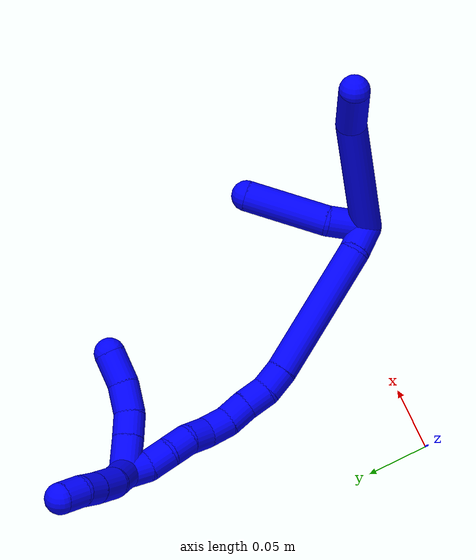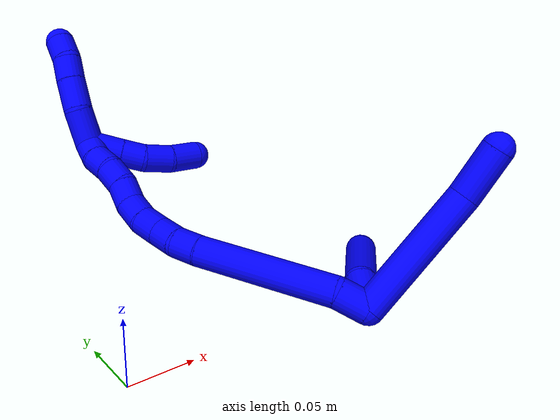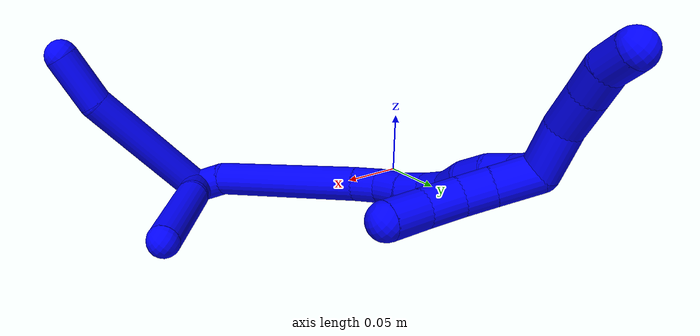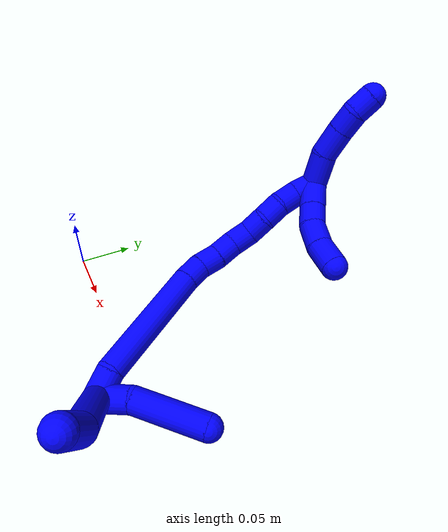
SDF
<sdf version="1.7">
 <world name="default">
  <model name="1">
   <static>0</static>
   <link name="1">
    <collision name="collision-cylinder-e_1_2_8">
     <pose>-0.004441 0.00738 0.053213 -0.137812 -0.082482 0.005696</pose>
     <geometry><cylinder><radius>0.0125</radius><length>0.107812</length></cylinder></geometry>
     <surface>
      <friction><ode><mu>1.16</mu><mu2>1.16</mu2><slip1>0</slip1><slip2>0</slip2></ode></friction>
      <contact><ode><kp>1e+06</kp><kd>1</kd><max_vel>0</max_vel><min_depth>0.001</min_depth></ode></contact>
     </surface>
    </collision>
    <visual name="visual-cylinder-e_1_2_8">
     <pose>-0.004441 0.00738 0.053213 -0.137812 -0.082482 0.005696</pose>
     <geometry><cylinder><radius>0.0125</radius><length>0.107812</length></cylinder></geometry>
     <material><ambient>0 0 1 1</ambient></material>
    </visual>
    <collision name="collision-cylinder-e_2_8_6">
     <pose>-0.015144 0.014215 0.126563 0.0271 -0.301369 -0.004115</pose>
     <geometry><cylinder><radius>0.0125</radius><length>0.042188</length></cylinder></geometry>
     <surface>
      <friction><ode><mu>1.16</mu><mu2>1.16</mu2><slip1>0</slip1><slip2>0</slip2></ode></friction>
      <contact><ode><kp>1e+06</kp><kd>1</kd><max_vel>0</max_vel><min_depth>0.001</min_depth></ode></contact>
     </surface>
    </collision>
    <visual name="visual-cylinder-e_2_8_6">
     <pose>-0.015144 0.014215 0.126563 0.0271 -0.301369 -0.004115</pose>
     <geometry><cylinder><radius>0.0125</radius><length>0.042188</length></cylinder></geometry>
     <material><ambient>0 0 1 1</ambient></material>
    </visual>
    <collision name="collision-cylinder-e_1_2_9">
     <pose>-0.000232 0.015767 0.003412 -1.3577 -0.014372 0.011595</pose>
     <geometry><cylinder><radius>0.0125</radius><length>0.032267</length></cylinder></geometry>
     <surface>
      <friction><ode><mu>1.16</mu><mu2>1.16</mu2><slip1>0</slip1><slip2>0</slip2></ode></friction>
      <contact><ode><kp>1e+06</kp><kd>1</kd><max_vel>0</max_vel><min_depth>0.001</min_depth></ode></contact>
     </surface>
    </collision>
    <visual name="visual-cylinder-e_1_2_9">
     <pose>-0.000232 0.015767 0.003412 -1.3577 -0.014372 0.011595</pose>
     <geometry><cylinder><radius>0.0125</radius><length>0.032267</length></cylinder></geometry>
     <material><ambient>0 0 1 1</ambient></material>
    </visual>
    <collision name="collision-cylinder-e_2_9_5">
     <pose>0.009478 0.063395 0.012567 -1.39244 0.29795 -0.249596</pose>
     <geometry><cylinder><radius>0.0125</radius><length>0.067733</length></cylinder></geometry>
     <surface>
      <friction><ode><mu>1.16</mu><mu2>1.16</mu2><slip1>0</slip1><slip2>0</slip2></ode></friction>
      <contact><ode><kp>1e+06</kp><kd>1</kd><max_vel>0</max_vel><min_depth>0.001</min_depth></ode></contact>
     </surface>
    </collision>
    <visual name="visual-cylinder-e_2_9_5">
     <pose>0.009478 0.063395 0.012567 -1.39244 0.29795 -0.249596</pose>
     <geometry><cylinder><radius>0.0125</radius><length>0.067733</length></cylinder></geometry>
     <material><ambient>0 0 1 1</ambient></material>
    </visual>
    <collision name="collision-cylinder-e_1_2_10">
     <pose>-0.010716 0.005351 -0.004548 -2.2753 -0.990679 1.72574</pose>
     <geometry><cylinder><radius>0.0125</radius><length>0.025624</length></cylinder></geometry>
     <surface>
      <friction><ode><mu>1.16</mu><mu2>1.16</mu2><slip1>0</slip1><slip2>0</slip2></ode></friction>
      <contact><ode><kp>1e+06</kp><kd>1</kd><max_vel>0</max_vel><min_depth>0.001</min_depth></ode></contact>
     </surface>
    </collision>
    <visual name="visual-cylinder-e_1_2_10">
     <pose>-0.010716 0.005351 -0.004548 -2.2753 -0.990679 1.72574</pose>
     <geometry><cylinder><radius>0.0125</radius><length>0.025624</length></cylinder></geometry>
     <material><ambient>0 0 1 1</ambient></material>
    </visual>
    <collision name="collision-cylinder-e_2_10_11">
     <pose>-0.057586 0.040776 -0.040206 -2.37311 -0.696041 1.46257</pose>
     <geometry><cylinder><radius>0.0125</radius><length>0.112773</length></cylinder></geometry>
     <surface>
      <friction><ode><mu>1.16</mu><mu2>1.16</mu2><slip1>0</slip1><slip2>0</slip2></ode></friction>
      <contact><ode><kp>1e+06</kp><kd>1</kd><max_vel>0</max_vel><min_depth>0.001</min_depth></ode></contact>
     </surface>
    </collision>
    <visual name="visual-cylinder-e_2_10_11">
     <pose>-0.057586 0.040776 -0.040206 -2.37311 -0.696041 1.46257</pose>
     <geometry><cylinder><radius>0.0125</radius><length>0.112773</length></cylinder></geometry>
     <material><ambient>0 0 1 1</ambient></material>
    </visual>
    <collision name="collision-cylinder-e_3_11_12">
     <pose>-0.099859 0.077293 -0.07635 -2.23403 -0.642464 1.19745</pose>
     <geometry><cylinder><radius>0.0125</radius><length>0.020423</length></cylinder></geometry>
     <surface>
      <friction><ode><mu>1.16</mu><mu2>1.16</mu2><slip1>0</slip1><slip2>0</slip2></ode></friction>
      <contact><ode><kp>1e+06</kp><kd>1</kd><max_vel>0</max_vel><min_depth>0.001</min_depth></ode></contact>
     </surface>
    </collision>
    <visual name="visual-cylinder-e_3_11_12">
     <pose>-0.099859 0.077293 -0.07635 -2.23403 -0.642464 1.19745</pose>
     <geometry><cylinder><radius>0.0125</radius><length>0.020423</length></cylinder></geometry>
     <material><ambient>0 0 1 1</ambient></material>
    </visual>
    <collision name="collision-cylinder-e_4_12_13">
     <pose>-0.110663 0.092024 -0.084923 -1.97443 -0.47944 0.709053</pose>
     <geometry><cylinder><radius>0.0125</radius><length>0.020316</length></cylinder></geometry>
     <surface>
      <friction><ode><mu>1.16</mu><mu2>1.16</mu2><slip1>0</slip1><slip2>0</slip2></ode></friction>
      <contact><ode><kp>1e+06</kp><kd>1</kd><max_vel>0</max_vel><min_depth>0.001</min_depth></ode></contact>
     </surface>
    </collision>
    <visual name="visual-cylinder-e_4_12_13">
     <pose>-0.110663 0.092024 -0.084923 -1.97443 -0.47944 0.709053</pose>
     <geometry><cylinder><radius>0.0125</radius><length>0.020316</length></cylinder></geometry>
     <material><ambient>0 0 1 1</ambient></material>
    </visual>
    <collision name="collision-cylinder-e_5_13_14">
     <pose>-0.121364 0.107762 -0.091656 -1.97575 -0.638447 0.929359</pose>
     <geometry><cylinder><radius>0.0125</radius><length>0.020188</length></cylinder></geometry>
     <surface>
      <friction><ode><mu>1.16</mu><mu2>1.16</mu2><slip1>0</slip1><slip2>0</slip2></ode></friction>
      <contact><ode><kp>1e+06</kp><kd>1</kd><max_vel>0</max_vel><min_depth>0.001</min_depth></ode></contact>
     </surface>
    </collision>
    <visual name="visual-cylinder-e_5_13_14">
     <pose>-0.121364 0.107762 -0.091656 -1.97575 -0.638447 0.929359</pose>
     <geometry><cylinder><radius>0.0125</radius><length>0.020188</length></cylinder></geometry>
     <material><ambient>0 0 1 1</ambient></material>
    </visual>
    <collision name="collision-cylinder-e_6_14_15">
     <pose>-0.133044 0.123802 -0.095812 -1.68234 -0.580187 0.644375</pose>
     <geometry><cylinder><radius>0.0125</radius><length>0.020669</length></cylinder></geometry>
     <surface>
      <friction><ode><mu>1.16</mu><mu2>1.16</mu2><slip1>0</slip1><slip2>0</slip2></ode></friction>
      <contact><ode><kp>1e+06</kp><kd>1</kd><max_vel>0</max_vel><min_depth>0.001</min_depth></ode></contact>
     </surface>
    </collision>
    <visual name="visual-cylinder-e_6_14_15">
     <pose>-0.133044 0.123802 -0.095812 -1.68234 -0.580187 0.644375</pose>
     <geometry><cylinder><radius>0.0125</radius><length>0.020669</length></cylinder></geometry>
     <material><ambient>0 0 1 1</ambient></material>
    </visual>
    <collision name="collision-cylinder-e_7_15_16">
     <pose>-0.145257 0.139673 -0.094731 -1.29729 -0.713591 0.550778</pose>
     <geometry><cylinder><radius>0.0125</radius><length>0.020007</length></cylinder></geometry>
     <surface>
      <friction><ode><mu>1.16</mu><mu2>1.16</mu2><slip1>0</slip1><slip2>0</slip2></ode></friction>
      <contact><ode><kp>1e+06</kp><kd>1</kd><max_vel>0</max_vel><min_depth>0.001</min_depth></ode></contact>
     </surface>
    </collision>
    <visual name="visual-cylinder-e_7_15_16">
     <pose>-0.145257 0.139673 -0.094731 -1.29729 -0.713591 0.550778</pose>
     <geometry><cylinder><radius>0.0125</radius><length>0.020007</length></cylinder></geometry>
     <material><ambient>0 0 1 1</ambient></material>
    </visual>
    <collision name="collision-cylinder-e_8_16_17">
     <pose>-0.15853 0.154328 -0.093328 -1.65733 -0.737532 0.797671</pose>
     <geometry><cylinder><radius>0.0125</radius><length>0.02</length></cylinder></geometry>
     <surface>
      <friction><ode><mu>1.16</mu><mu2>1.16</mu2><slip1>0</slip1><slip2>0</slip2></ode></friction>
      <contact><ode><kp>1e+06</kp><kd>1</kd><max_vel>0</max_vel><min_depth>0.001</min_depth></ode></contact>
     </surface>
    </collision>
    <visual name="visual-cylinder-e_8_16_17">
     <pose>-0.15853 0.154328 -0.093328 -1.65733 -0.737532 0.797671</pose>
     <geometry><cylinder><radius>0.0125</radius><length>0.02</length></cylinder></geometry>
     <material><ambient>0 0 1 1</ambient></material>
    </visual>
    <collision name="collision-cylinder-e_9_17_18">
     <pose>-0.17054 0.169831 -0.096413 -1.86295 -0.556956 0.734232</pose>
     <geometry><cylinder><radius>0.0125</radius><length>0.020001</length></cylinder></geometry>
     <surface>
      <friction><ode><mu>1.16</mu><mu2>1.16</mu2><slip1>0</slip1><slip2>0</slip2></ode></friction>
      <contact><ode><kp>1e+06</kp><kd>1</kd><max_vel>0</max_vel><min_depth>0.001</min_depth></ode></contact>
     </surface>
    </collision>
    <visual name="visual-cylinder-e_9_17_18">
     <pose>-0.17054 0.169831 -0.096413 -1.86295 -0.556956 0.734232</pose>
     <geometry><cylinder><radius>0.0125</radius><length>0.020001</length></cylinder></geometry>
     <material><ambient>0 0 1 1</ambient></material>
    </visual>
    <collision name="collision-cylinder-e_10_18_1">
     <pose>-0.18019 0.186954 -0.098589 -1.54096 -0.451535 0.438689</pose>
     <geometry><cylinder><radius>0.0125</radius><length>0.02</length></cylinder></geometry>
     <surface>
      <friction><ode><mu>1.16</mu><mu2>1.16</mu2><slip1>0</slip1><slip2>0</slip2></ode></friction>
      <contact><ode><kp>1e+06</kp><kd>1</kd><max_vel>0</max_vel><min_depth>0.001</min_depth></ode></contact>
     </surface>
    </collision>
    <visual name="visual-cylinder-e_10_18_1">
     <pose>-0.18019 0.186954 -0.098589 -1.54096 -0.451535 0.438689</pose>
     <geometry><cylinder><radius>0.0125</radius><length>0.02</length></cylinder></geometry>
     <material><ambient>0 0 1 1</ambient></material>
    </visual>
    <collision name="collision-cylinder-e_1_1_19">
     <pose>-0.198555 0.200178 -0.091222 -0.537342 -1.0376 0.311854</pose>
     <geometry><cylinder><radius>0.0125</radius><length>0.032515</length></cylinder></geometry>
     <surface>
      <friction><ode><mu>1.16</mu><mu2>1.16</mu2><slip1>0</slip1><slip2>0</slip2></ode></friction>
      <contact><ode><kp>1e+06</kp><kd>1</kd><max_vel>0</max_vel><min_depth>0.001</min_depth></ode></contact>
     </surface>
    </collision>
    <visual name="visual-cylinder-e_1_1_19">
     <pose>-0.198555 0.200178 -0.091222 -0.537342 -1.0376 0.311854</pose>
     <geometry><cylinder><radius>0.0125</radius><length>0.032515</length></cylinder></geometry>
     <material><ambient>0 0 1 1</ambient></material>
    </visual>
    <collision name="collision-cylinder-e_2_19_20">
     <pose>-0.22265 0.211336 -0.078236 -0.866469 -0.837638 0.406131</pose>
     <geometry><cylinder><radius>0.0125</radius><length>0.02717</length></cylinder></geometry>
     <surface>
      <friction><ode><mu>1.16</mu><mu2>1.16</mu2><slip1>0</slip1><slip2>0</slip2></ode></friction>
      <contact><ode><kp>1e+06</kp><kd>1</kd><max_vel>0</max_vel><min_depth>0.001</min_depth></ode></contact>
     </surface>
    </collision>
    <visual name="visual-cylinder-e_2_19_20">
     <pose>-0.22265 0.211336 -0.078236 -0.866469 -0.837638 0.406131</pose>
     <geometry><cylinder><radius>0.0125</radius><length>0.02717</length></cylinder></geometry>
     <material><ambient>0 0 1 1</ambient></material>
    </visual>
    <collision name="collision-cylinder-e_3_20_21">
     <pose>-0.239788 0.223788 -0.067695 -0.870739 -0.772829 0.374076</pose>
     <geometry><cylinder><radius>0.0125</radius><length>0.020179</length></cylinder></geometry>
     <surface>
      <friction><ode><mu>1.16</mu><mu2>1.16</mu2><slip1>0</slip1><slip2>0</slip2></ode></friction>
      <contact><ode><kp>1e+06</kp><kd>1</kd><max_vel>0</max_vel><min_depth>0.001</min_depth></ode></contact>
     </surface>
    </collision>
    <visual name="visual-cylinder-e_3_20_21">
     <pose>-0.239788 0.223788 -0.067695 -0.870739 -0.772829 0.374076</pose>
     <geometry><cylinder><radius>0.0125</radius><length>0.020179</length></cylinder></geometry>
     <material><ambient>0 0 1 1</ambient></material>
    </visual>
    <collision name="collision-cylinder-e_4_21_4">
     <pose>-0.253292 0.236732 -0.0609 -1.28978 -0.696611 0.533236</pose>
     <geometry><cylinder><radius>0.0125</radius><length>0.020136</length></cylinder></geometry>
     <surface>
      <friction><ode><mu>1.16</mu><mu2>1.16</mu2><slip1>0</slip1><slip2>0</slip2></ode></friction>
      <contact><ode><kp>1e+06</kp><kd>1</kd><max_vel>0</max_vel><min_depth>0.001</min_depth></ode></contact>
     </surface>
    </collision>
    <visual name="visual-cylinder-e_4_21_4">
     <pose>-0.253292 0.236732 -0.0609 -1.28978 -0.696611 0.533236</pose>
     <geometry><cylinder><radius>0.0125</radius><length>0.020136</length></cylinder></geometry>
     <material><ambient>0 0 1 1</ambient></material>
    </visual>
    <collision name="collision-cylinder-e_1_1_22">
     <pose>-0.172381 0.194456 -0.090992 0.200891 1.01981 0.112606</pose>
     <geometry><cylinder><radius>0.0125</radius><length>0.028574</length></cylinder></geometry>
     <surface>
      <friction><ode><mu>1.16</mu><mu2>1.16</mu2><slip1>0</slip1><slip2>0</slip2></ode></friction>
      <contact><ode><kp>1e+06</kp><kd>1</kd><max_vel>0</max_vel><min_depth>0.001</min_depth></ode></contact>
     </surface>
    </collision>
    <visual name="visual-cylinder-e_1_1_22">
     <pose>-0.172381 0.194456 -0.090992 0.200891 1.01981 0.112606</pose>
     <geometry><cylinder><radius>0.0125</radius><length>0.028574</length></cylinder></geometry>
     <material><ambient>0 0 1 1</ambient></material>
    </visual>
    <collision name="collision-cylinder-e_2_22_23">
     <pose>-0.151627 0.192178 -0.078401 0.148186 1.01581 0.082587</pose>
     <geometry><cylinder><radius>0.0125</radius><length>0.020193</length></cylinder></geometry>
     <surface>
      <friction><ode><mu>1.16</mu><mu2>1.16</mu2><slip1>0</slip1><slip2>0</slip2></ode></friction>
      <contact><ode><kp>1e+06</kp><kd>1</kd><max_vel>0</max_vel><min_depth>0.001</min_depth></ode></contact>
     </surface>
    </collision>
    <visual name="visual-cylinder-e_2_22_23">
     <pose>-0.151627 0.192178 -0.078401 0.148186 1.01581 0.082587</pose>
     <geometry><cylinder><radius>0.0125</radius><length>0.020193</length></cylinder></geometry>
     <material><ambient>0 0 1 1</ambient></material>
    </visual>
    <collision name="collision-cylinder-e_3_23_24">
     <pose>-0.133465 0.193772 -0.065585 -0.30527 0.880078 -0.144604</pose>
     <geometry><cylinder><radius>0.0125</radius><length>0.024861</length></cylinder></geometry>
     <surface>
      <friction><ode><mu>1.16</mu><mu2>1.16</mu2><slip1>0</slip1><slip2>0</slip2></ode></friction>
      <contact><ode><kp>1e+06</kp><kd>1</kd><max_vel>0</max_vel><min_depth>0.001</min_depth></ode></contact>
     </surface>
    </collision>
    <visual name="visual-cylinder-e_3_23_24">
     <pose>-0.133465 0.193772 -0.065585 -0.30527 0.880078 -0.144604</pose>
     <geometry><cylinder><radius>0.0125</radius><length>0.024861</length></cylinder></geometry>
     <material><ambient>0 0 1 1</ambient></material>
    </visual>
    <collision name="collision-cylinder-e_4_24_3">
     <pose>-0.115208 0.201282 -0.049529 -0.54283 0.718021 -0.208109</pose>
     <geometry><cylinder><radius>0.0125</radius><length>0.026372</length></cylinder></geometry>
     <surface>
      <friction><ode><mu>1.16</mu><mu2>1.16</mu2><slip1>0</slip1><slip2>0</slip2></ode></friction>
      <contact><ode><kp>1e+06</kp><kd>1</kd><max_vel>0</max_vel><min_depth>0.001</min_depth></ode></contact>
     </surface>
    </collision>
    <visual name="visual-cylinder-e_4_24_3">
     <pose>-0.115208 0.201282 -0.049529 -0.54283 0.718021 -0.208109</pose>
     <geometry><cylinder><radius>0.0125</radius><length>0.026372</length></cylinder></geometry>
     <material><ambient>0 0 1 1</ambient></material>
    </visual>
    <collision name="collision-sphere-3">
     <pose>-0.106533 0.206412 -0.041026 0 -0 0</pose>
     <geometry><sphere><radius>0.0125</radius></sphere></geometry>
     <surface>
      <friction><ode><mu>1.16</mu><mu2>1.16</mu2><slip1>0</slip1><slip2>0</slip2></ode></friction>
      <contact><ode><kp>1e+06</kp><kd>1</kd><max_vel>0</max_vel><min_depth>0.001</min_depth></ode></contact>
     </surface>
    </collision>
    <visual name="visual-sphere-3">
     <pose>-0.106533 0.206412 -0.041026 0 -0 0</pose>
     <geometry><sphere><radius>0.0125</radius></sphere></geometry>
     <material><ambient>0 0 1 1</ambient></material>
    </visual>
    <collision name="collision-sphere-24">
     <pose>-0.123883 0.196152 -0.058032 0 -0 0</pose>
     <geometry><sphere><radius>0.0125</radius></sphere></geometry>
     <surface>
      <friction><ode><mu>1.16</mu><mu2>1.16</mu2><slip1>0</slip1><slip2>0</slip2></ode></friction>
      <contact><ode><kp>1e+06</kp><kd>1</kd><max_vel>0</max_vel><min_depth>0.001</min_depth></ode></contact>
     </surface>
    </collision>
    <visual name="visual-sphere-24">
     <pose>-0.123883 0.196152 -0.058032 0 -0 0</pose>
     <geometry><sphere><radius>0.0125</radius></sphere></geometry>
     <material><ambient>0 0 1 1</ambient></material>
    </visual>
    <collision name="collision-sphere-23">
     <pose>-0.143046 0.191392 -0.073139 0 -0 0</pose>
     <geometry><sphere><radius>0.0125</radius></sphere></geometry>
     <surface>
      <friction><ode><mu>1.16</mu><mu2>1.16</mu2><slip1>0</slip1><slip2>0</slip2></ode></friction>
      <contact><ode><kp>1e+06</kp><kd>1</kd><max_vel>0</max_vel><min_depth>0.001</min_depth></ode></contact>
     </surface>
    </collision>
    <visual name="visual-sphere-23">
     <pose>-0.143046 0.191392 -0.073139 0 -0 0</pose>
     <geometry><sphere><radius>0.0125</radius></sphere></geometry>
     <material><ambient>0 0 1 1</ambient></material>
    </visual>
    <collision name="collision-sphere-22">
     <pose>-0.160208 0.192963 -0.083662 0 -0 0</pose>
     <geometry><sphere><radius>0.0125</radius></sphere></geometry>
     <surface>
      <friction><ode><mu>1.16</mu><mu2>1.16</mu2><slip1>0</slip1><slip2>0</slip2></ode></friction>
      <contact><ode><kp>1e+06</kp><kd>1</kd><max_vel>0</max_vel><min_depth>0.001</min_depth></ode></contact>
     </surface>
    </collision>
    <visual name="visual-sphere-22">
     <pose>-0.160208 0.192963 -0.083662 0 -0 0</pose>
     <geometry><sphere><radius>0.0125</radius></sphere></geometry>
     <material><ambient>0 0 1 1</ambient></material>
    </visual>
    <collision name="collision-sphere-4">
     <pose>-0.259752 0.244152 -0.058758 0 -0 0</pose>
     <geometry><sphere><radius>0.0125</radius></sphere></geometry>
     <surface>
      <friction><ode><mu>1.16</mu><mu2>1.16</mu2><slip1>0</slip1><slip2>0</slip2></ode></friction>
      <contact><ode><kp>1e+06</kp><kd>1</kd><max_vel>0</max_vel><min_depth>0.001</min_depth></ode></contact>
     </surface>
    </collision>
    <visual name="visual-sphere-4">
     <pose>-0.259752 0.244152 -0.058758 0 -0 0</pose>
     <geometry><sphere><radius>0.0125</radius></sphere></geometry>
     <material><ambient>0 0 1 1</ambient></material>
    </visual>
    <collision name="collision-sphere-21">
     <pose>-0.246832 0.229313 -0.063042 0 -0 0</pose>
     <geometry><sphere><radius>0.0125</radius></sphere></geometry>
     <surface>
      <friction><ode><mu>1.16</mu><mu2>1.16</mu2><slip1>0</slip1><slip2>0</slip2></ode></friction>
      <contact><ode><kp>1e+06</kp><kd>1</kd><max_vel>0</max_vel><min_depth>0.001</min_depth></ode></contact>
     </surface>
    </collision>
    <visual name="visual-sphere-21">
     <pose>-0.246832 0.229313 -0.063042 0 -0 0</pose>
     <geometry><sphere><radius>0.0125</radius></sphere></geometry>
     <material><ambient>0 0 1 1</ambient></material>
    </visual>
    <collision name="collision-sphere-20">
     <pose>-0.232744 0.218264 -0.072349 0 -0 0</pose>
     <geometry><sphere><radius>0.0125</radius></sphere></geometry>
     <surface>
      <friction><ode><mu>1.16</mu><mu2>1.16</mu2><slip1>0</slip1><slip2>0</slip2></ode></friction>
      <contact><ode><kp>1e+06</kp><kd>1</kd><max_vel>0</max_vel><min_depth>0.001</min_depth></ode></contact>
     </surface>
    </collision>
    <visual name="visual-sphere-20">
     <pose>-0.232744 0.218264 -0.072349 0 -0 0</pose>
     <geometry><sphere><radius>0.0125</radius></sphere></geometry>
     <material><ambient>0 0 1 1</ambient></material>
    </visual>
    <collision name="collision-sphere-10">
     <pose>-0.021432 0.010701 -0.009096 0 -0 0</pose>
     <geometry><sphere><radius>0.0125</radius></sphere></geometry>
     <surface>
      <friction><ode><mu>1.16</mu><mu2>1.16</mu2><slip1>0</slip1><slip2>0</slip2></ode></friction>
      <contact><ode><kp>1e+06</kp><kd>1</kd><max_vel>0</max_vel><min_depth>0.001</min_depth></ode></contact>
     </surface>
    </collision>
    <visual name="visual-sphere-10">
     <pose>-0.021432 0.010701 -0.009096 0 -0 0</pose>
     <geometry><sphere><radius>0.0125</radius></sphere></geometry>
     <material><ambient>0 0 1 1</ambient></material>
    </visual>
    <collision name="collision-sphere-5">
     <pose>0.01942 0.095255 0.01831 0 -0 0</pose>
     <geometry><sphere><radius>0.0125</radius></sphere></geometry>
     <surface>
      <friction><ode><mu>1.16</mu><mu2>1.16</mu2><slip1>0</slip1><slip2>0</slip2></ode></friction>
      <contact><ode><kp>1e+06</kp><kd>1</kd><max_vel>0</max_vel><min_depth>0.001</min_depth></ode></contact>
     </surface>
    </collision>
    <visual name="visual-sphere-5">
     <pose>0.01942 0.095255 0.01831 0 -0 0</pose>
     <geometry><sphere><radius>0.0125</radius></sphere></geometry>
     <material><ambient>0 0 1 1</ambient></material>
    </visual>
    <collision name="collision-sphere-6">
     <pose>-0.021405 0.013669 0.146699 0 -0 0</pose>
     <geometry><sphere><radius>0.0125</radius></sphere></geometry>
     <surface>
      <friction><ode><mu>1.16</mu><mu2>1.16</mu2><slip1>0</slip1><slip2>0</slip2></ode></friction>
      <contact><ode><kp>1e+06</kp><kd>1</kd><max_vel>0</max_vel><min_depth>0.001</min_depth></ode></contact>
     </surface>
    </collision>
    <visual name="visual-sphere-6">
     <pose>-0.021405 0.013669 0.146699 0 -0 0</pose>
     <geometry><sphere><radius>0.0125</radius></sphere></geometry>
     <material><ambient>0 0 1 1</ambient></material>
    </visual>
    <collision name="collision-sphere-9">
     <pose>-0.000464 0.031534 0.006823 0 -0 0</pose>
     <geometry><sphere><radius>0.0125</radius></sphere></geometry>
     <surface>
      <friction><ode><mu>1.16</mu><mu2>1.16</mu2><slip1>0</slip1><slip2>0</slip2></ode></friction>
      <contact><ode><kp>1e+06</kp><kd>1</kd><max_vel>0</max_vel><min_depth>0.001</min_depth></ode></contact>
     </surface>
    </collision>
    <visual name="visual-sphere-9">
     <pose>-0.000464 0.031534 0.006823 0 -0 0</pose>
     <geometry><sphere><radius>0.0125</radius></sphere></geometry>
     <material><ambient>0 0 1 1</ambient></material>
    </visual>
    <collision name="collision-sphere-2">
     <geometry><sphere><radius>0.0125</radius></sphere></geometry>
     <surface>
      <friction><ode><mu>1.16</mu><mu2>1.16</mu2><slip1>0</slip1><slip2>0</slip2></ode></friction>
      <contact><ode><kp>1e+06</kp><kd>1</kd><max_vel>0</max_vel><min_depth>0.001</min_depth></ode></contact>
     </surface>
    </collision>
    <visual name="visual-sphere-2">
     <geometry><sphere><radius>0.0125</radius></sphere></geometry>
     <material><ambient>0 0 1 1</ambient></material>
    </visual>
    <collision name="collision-sphere-19">
     <pose>-0.212555 0.204408 -0.084123 0 -0 0</pose>
     <geometry><sphere><radius>0.0125</radius></sphere></geometry>
     <surface>
      <friction><ode><mu>1.16</mu><mu2>1.16</mu2><slip1>0</slip1><slip2>0</slip2></ode></friction>
      <contact><ode><kp>1e+06</kp><kd>1</kd><max_vel>0</max_vel><min_depth>0.001</min_depth></ode></contact>
     </surface>
    </collision>
    <visual name="visual-sphere-19">
     <pose>-0.212555 0.204408 -0.084123 0 -0 0</pose>
     <geometry><sphere><radius>0.0125</radius></sphere></geometry>
     <material><ambient>0 0 1 1</ambient></material>
    </visual>
    <collision name="collision-sphere-8">
     <pose>-0.008883 0.01476 0.106427 0 -0 0</pose>
     <geometry><sphere><radius>0.0125</radius></sphere></geometry>
     <surface>
      <friction><ode><mu>1.16</mu><mu2>1.16</mu2><slip1>0</slip1><slip2>0</slip2></ode></friction>
      <contact><ode><kp>1e+06</kp><kd>1</kd><max_vel>0</max_vel><min_depth>0.001</min_depth></ode></contact>
     </surface>
    </collision>
    <visual name="visual-sphere-8">
     <pose>-0.008883 0.01476 0.106427 0 -0 0</pose>
     <geometry><sphere><radius>0.0125</radius></sphere></geometry>
     <material><ambient>0 0 1 1</ambient></material>
    </visual>
    <collision name="collision-sphere-11">
     <pose>-0.09374 0.070851 -0.071316 0 -0 0</pose>
     <geometry><sphere><radius>0.0125</radius></sphere></geometry>
     <surface>
      <friction><ode><mu>1.16</mu><mu2>1.16</mu2><slip1>0</slip1><slip2>0</slip2></ode></friction>
      <contact><ode><kp>1e+06</kp><kd>1</kd><max_vel>0</max_vel><min_depth>0.001</min_depth></ode></contact>
     </surface>
    </collision>
    <visual name="visual-sphere-11">
     <pose>-0.09374 0.070851 -0.071316 0 -0 0</pose>
     <geometry><sphere><radius>0.0125</radius></sphere></geometry>
     <material><ambient>0 0 1 1</ambient></material>
    </visual>
    <collision name="collision-sphere-12">
     <pose>-0.105977 0.083735 -0.081383 0 -0 0</pose>
     <geometry><sphere><radius>0.0125</radius></sphere></geometry>
     <surface>
      <friction><ode><mu>1.16</mu><mu2>1.16</mu2><slip1>0</slip1><slip2>0</slip2></ode></friction>
      <contact><ode><kp>1e+06</kp><kd>1</kd><max_vel>0</max_vel><min_depth>0.001</min_depth></ode></contact>
     </surface>
    </collision>
    <visual name="visual-sphere-12">
     <pose>-0.105977 0.083735 -0.081383 0 -0 0</pose>
     <geometry><sphere><radius>0.0125</radius></sphere></geometry>
     <material><ambient>0 0 1 1</ambient></material>
    </visual>
    <collision name="collision-sphere-13">
     <pose>-0.115348 0.100312 -0.088463 0 -0 0</pose>
     <geometry><sphere><radius>0.0125</radius></sphere></geometry>
     <surface>
      <friction><ode><mu>1.16</mu><mu2>1.16</mu2><slip1>0</slip1><slip2>0</slip2></ode></friction>
      <contact><ode><kp>1e+06</kp><kd>1</kd><max_vel>0</max_vel><min_depth>0.001</min_depth></ode></contact>
     </surface>
    </collision>
    <visual name="visual-sphere-13">
     <pose>-0.115348 0.100312 -0.088463 0 -0 0</pose>
     <geometry><sphere><radius>0.0125</radius></sphere></geometry>
     <material><ambient>0 0 1 1</ambient></material>
    </visual>
    <collision name="collision-sphere-14">
     <pose>-0.127379 0.115212 -0.09485 0 -0 0</pose>
     <geometry><sphere><radius>0.0125</radius></sphere></geometry>
     <surface>
      <friction><ode><mu>1.16</mu><mu2>1.16</mu2><slip1>0</slip1><slip2>0</slip2></ode></friction>
      <contact><ode><kp>1e+06</kp><kd>1</kd><max_vel>0</max_vel><min_depth>0.001</min_depth></ode></contact>
     </surface>
    </collision>
    <visual name="visual-sphere-14">
     <pose>-0.127379 0.115212 -0.09485 0 -0 0</pose>
     <geometry><sphere><radius>0.0125</radius></sphere></geometry>
     <material><ambient>0 0 1 1</ambient></material>
    </visual>
    <collision name="collision-sphere-15">
     <pose>-0.138709 0.132391 -0.096774 0 -0 0</pose>
     <geometry><sphere><radius>0.0125</radius></sphere></geometry>
     <surface>
      <friction><ode><mu>1.16</mu><mu2>1.16</mu2><slip1>0</slip1><slip2>0</slip2></ode></friction>
      <contact><ode><kp>1e+06</kp><kd>1</kd><max_vel>0</max_vel><min_depth>0.001</min_depth></ode></contact>
     </surface>
    </collision>
    <visual name="visual-sphere-15">
     <pose>-0.138709 0.132391 -0.096774 0 -0 0</pose>
     <geometry><sphere><radius>0.0125</radius></sphere></geometry>
     <material><ambient>0 0 1 1</ambient></material>
    </visual>
    <collision name="collision-sphere-16">
     <pose>-0.151805 0.146955 -0.092688 0 -0 0</pose>
     <geometry><sphere><radius>0.0125</radius></sphere></geometry>
     <surface>
      <friction><ode><mu>1.16</mu><mu2>1.16</mu2><slip1>0</slip1><slip2>0</slip2></ode></friction>
      <contact><ode><kp>1e+06</kp><kd>1</kd><max_vel>0</max_vel><min_depth>0.001</min_depth></ode></contact>
     </surface>
    </collision>
    <visual name="visual-sphere-16">
     <pose>-0.151805 0.146955 -0.092688 0 -0 0</pose>
     <geometry><sphere><radius>0.0125</radius></sphere></geometry>
     <material><ambient>0 0 1 1</ambient></material>
    </visual>
    <collision name="collision-sphere-17">
     <pose>-0.165254 0.161702 -0.093968 0 -0 0</pose>
     <geometry><sphere><radius>0.0125</radius></sphere></geometry>
     <surface>
      <friction><ode><mu>1.16</mu><mu2>1.16</mu2><slip1>0</slip1><slip2>0</slip2></ode></friction>
      <contact><ode><kp>1e+06</kp><kd>1</kd><max_vel>0</max_vel><min_depth>0.001</min_depth></ode></contact>
     </surface>
    </collision>
    <visual name="visual-sphere-17">
     <pose>-0.165254 0.161702 -0.093968 0 -0 0</pose>
     <geometry><sphere><radius>0.0125</radius></sphere></geometry>
     <material><ambient>0 0 1 1</ambient></material>
    </visual>
    <collision name="collision-sphere-18">
     <pose>-0.175827 0.17796 -0.098858 0 -0 0</pose>
     <geometry><sphere><radius>0.0125</radius></sphere></geometry>
     <surface>
      <friction><ode><mu>1.16</mu><mu2>1.16</mu2><slip1>0</slip1><slip2>0</slip2></ode></friction>
      <contact><ode><kp>1e+06</kp><kd>1</kd><max_vel>0</max_vel><min_depth>0.001</min_depth></ode></contact>
     </surface>
    </collision>
    <visual name="visual-sphere-18">
     <pose>-0.175827 0.17796 -0.098858 0 -0 0</pose>
     <geometry><sphere><radius>0.0125</radius></sphere></geometry>
     <material><ambient>0 0 1 1</ambient></material>
    </visual>
    <collision name="collision-sphere-1">
     <pose>-0.184554 0.195948 -0.098321 0 -0 0</pose>
     <geometry><sphere><radius>0.0125</radius></sphere></geometry>
     <surface>
      <friction><ode><mu>1.16</mu><mu2>1.16</mu2><slip1>0</slip1><slip2>0</slip2></ode></friction>
      <contact><ode><kp>1e+06</kp><kd>1</kd><max_vel>0</max_vel><min_depth>0.001</min_depth></ode></contact>
     </surface>
    </collision>
    <visual name="visual-sphere-1">
     <pose>-0.184554 0.195948 -0.098321 0 -0 0</pose>
     <geometry><sphere><radius>0.0125</radius></sphere></geometry>
     <material><ambient>0 0 1 1</ambient></material>
    </visual>
    <inertial>
     <pose>-0.088825 0.097638 -0.029592 0 -0 0</pose>
     <mass>0.75</mass>
     <inertia>
      <ixx>0.000258</ixx>
      <ixy>0</ixy>
      <ixz>0</ixz>
      <iyy>0.000317</iyy>
      <iyz>0</iyz>
      <izz>-2.3e-05</izz>
     </inertia>
    </inertial>
   </link>
   <pose>0.178942 -0.034336 0.011701 0.035162 0.840524 -0.409448</pose>
  </model>
 </world>
</sdf>
